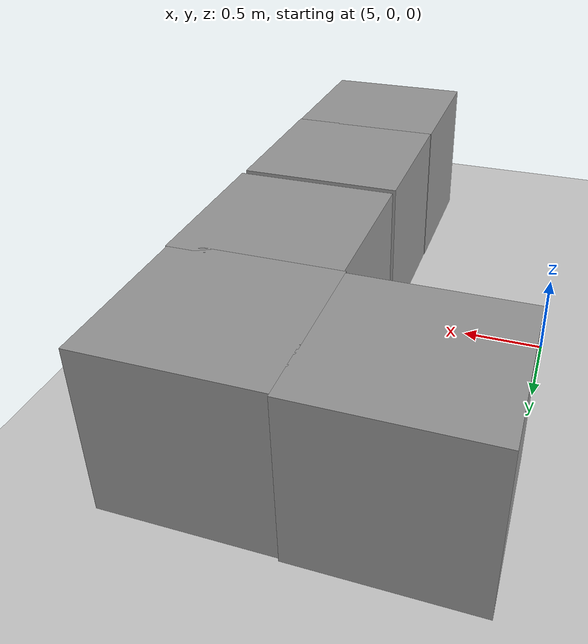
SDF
<?xml version="1.0" ?>
<sdf version='1.7'>
  <world name='default'>

    <include>
      <uri>model://ground_plane</uri>
    </include>
    <include>
      <uri>model://sun</uri>
    </include>

    <plugin name='ros_interface_plugin' filename='librotors_gazebo_ros_interface_plugin.so'/>
    <spherical_coordinates>
      <surface_model>EARTH_WGS84</surface_model>
      <latitude_deg>47.3667</latitude_deg>
      <longitude_deg>8.55</longitude_deg>
      <elevation>500</elevation>
      <heading_deg>0</heading_deg>
    </spherical_coordinates>
    <physics type='ode'>
      <ode>
        <solver>
          <type>quick</type>
          <iters>1000</iters>
          <sor>1.3</sor>
          <use_dynamic_moi_rescaling>0</use_dynamic_moi_rescaling>
        </solver>
        <constraints>
          <cfm>0</cfm>
          <erp>0.2</erp>
          <contact_max_correcting_vel>100</contact_max_correcting_vel>
          <contact_surface_layer>0.001</contact_surface_layer>
        </constraints>
      </ode>
      <max_step_size>0.002</max_step_size>
      <real_time_factor>1</real_time_factor>
      <real_time_update_rate>500</real_time_update_rate>
    </physics>

    <gravity>0 0 -9.8</gravity>
    <magnetic_field>6e-06 2.3e-05 -4.2e-05</magnetic_field>
    <atmosphere type='adiabatic'/>
    <scene>
      <ambient>0.4 0.4 0.4 1</ambient>
      <background>0.7 0.7 0.7 1</background>
      <shadows>1</shadows>
    </scene>
    <wind/>

    <model name='unit_box'>
      <pose>6.49198 1.54562 0.5 0 -0 0</pose>
      <link name='link'>
        <inertial>
          <mass>1</mass>
          <inertia>
            <ixx>0.166667</ixx>
            <ixy>0</ixy>
            <ixz>0</ixz>
            <iyy>0.166667</iyy>
            <iyz>0</iyz>
            <izz>0.166667</izz>
          </inertia>
          <pose>0 0 0 0 -0 0</pose>
        </inertial>
        <collision name='collision'>
          <geometry>
            <box>
              <size>1 1 1</size>
            </box>
          </geometry>
          <max_contacts>10</max_contacts>
          <surface>
            <contact>
              <ode/>
            </contact>
            <bounce/>
            <friction>
              <torsional>
                <ode/>
              </torsional>
              <ode/>
            </friction>
          </surface>
        </collision>
        <visual name='visual'>
          <geometry>
            <box>
              <size>1 1 1</size>
            </box>
          </geometry>
          <material>
            <script>
              <name>Gazebo/Grey</name>
              <uri>file://media/materials/scripts/gazebo.material</uri>
            </script>
          </material>
        </visual>
        <self_collide>0</self_collide>
        <enable_wind>0</enable_wind>
        <kinematic>0</kinematic>
      </link>
    </model>
    <model name='unit_box_0'>
      <pose>6.50132 0.593135 0.5 0 -0 0</pose>
      <link name='link'>
        <inertial>
          <mass>1</mass>
          <inertia>
            <ixx>0.166667</ixx>
            <ixy>0</ixy>
            <ixz>0</ixz>
            <iyy>0.166667</iyy>
            <iyz>0</iyz>
            <izz>0.166667</izz>
          </inertia>
          <pose>0 0 0 0 -0 0</pose>
        </inertial>
        <collision name='collision'>
          <geometry>
            <box>
              <size>1 1 1</size>
            </box>
          </geometry>
          <max_contacts>10</max_contacts>
          <surface>
            <contact>
              <ode/>
            </contact>
            <bounce/>
            <friction>
              <torsional>
                <ode/>
              </torsional>
              <ode/>
            </friction>
          </surface>
        </collision>
        <visual name='visual'>
          <geometry>
            <box>
              <size>1 1 1</size>
            </box>
          </geometry>
          <material>
            <script>
              <name>Gazebo/Grey</name>
              <uri>file://media/materials/scripts/gazebo.material</uri>
            </script>
          </material>
        </visual>
        <self_collide>0</self_collide>
        <enable_wind>0</enable_wind>
        <kinematic>0</kinematic>
      </link>
    </model>
    <model name='unit_box_0_clone'>
      <pose>6.49481 -0.45256 0.5 0 -0 0.000232</pose>
      <link name='link'>
        <inertial>
          <mass>1</mass>
          <inertia>
            <ixx>0.166667</ixx>
            <ixy>0</ixy>
            <ixz>0</ixz>
            <iyy>0.166667</iyy>
            <iyz>0</iyz>
            <izz>0.166667</izz>
          </inertia>
          <pose>0 0 0 0 -0 0</pose>
        </inertial>
        <collision name='collision'>
          <geometry>
            <box>
              <size>1 1 1</size>
            </box>
          </geometry>
          <max_contacts>10</max_contacts>
          <surface>
            <contact>
              <ode/>
            </contact>
            <bounce/>
            <friction>
              <torsional>
                <ode/>
              </torsional>
              <ode/>
            </friction>
          </surface>
        </collision>
        <visual name='visual'>
          <geometry>
            <box>
              <size>1 1 1</size>
            </box>
          </geometry>
          <material>
            <script>
              <name>Gazebo/Grey</name>
              <uri>file://media/materials/scripts/gazebo.material</uri>
            </script>
          </material>
        </visual>
        <self_collide>0</self_collide>
        <enable_wind>0</enable_wind>
        <kinematic>0</kinematic>
      </link>
    </model>
    <model name='unit_box_0_clone_0'>
      <pose>6.49083 -1.44373 0.5 0 -0 0.000232</pose>
      <link name='link'>
        <inertial>
          <mass>1</mass>
          <inertia>
            <ixx>0.166667</ixx>
            <ixy>0</ixy>
            <ixz>0</ixz>
            <iyy>0.166667</iyy>
            <iyz>0</iyz>
            <izz>0.166667</izz>
          </inertia>
          <pose>0 0 0 0 -0 0</pose>
        </inertial>
        <collision name='collision'>
          <geometry>
            <box>
              <size>1 1 1</size>
            </box>
          </geometry>
          <max_contacts>10</max_contacts>
          <surface>
            <contact>
              <ode/>
            </contact>
            <bounce/>
            <friction>
              <torsional>
                <ode/>
              </torsional>
              <ode/>
            </friction>
          </surface>
        </collision>
        <visual name='visual'>
          <geometry>
            <box>
              <size>1 1 1</size>
            </box>
          </geometry>
          <material>
            <script>
              <name>Gazebo/Grey</name>
              <uri>file://media/materials/scripts/gazebo.material</uri>
            </script>
          </material>
        </visual>
        <self_collide>0</self_collide>
        <enable_wind>0</enable_wind>
        <kinematic>0</kinematic>
      </link>
    </model>
    <model name='unit_box_0_clone_1'>
      <pose>5.49927 1.56025 0.5 0 -0 0.000232</pose>
      <link name='link'>
        <inertial>
          <mass>1</mass>
          <inertia>
            <ixx>0.166667</ixx>
            <ixy>0</ixy>
            <ixz>0</ixz>
            <iyy>0.166667</iyy>
            <iyz>0</iyz>
            <izz>0.166667</izz>
          </inertia>
          <pose>0 0 0 0 -0 0</pose>
        </inertial>
        <collision name='collision'>
          <geometry>
            <box>
              <size>1 1 1</size>
            </box>
          </geometry>
          <max_contacts>10</max_contacts>
          <surface>
            <contact>
              <ode/>
            </contact>
            <bounce/>
            <friction>
              <torsional>
                <ode/>
              </torsional>
              <ode/>
            </friction>
          </surface>
        </collision>
        <visual name='visual'>
          <geometry>
            <box>
              <size>1 1 1</size>
            </box>
          </geometry>
          <material>
            <script>
              <name>Gazebo/Grey</name>
              <uri>file://media/materials/scripts/gazebo.material</uri>
            </script>
          </material>
        </visual>
        <self_collide>0</self_collide>
        <enable_wind>0</enable_wind>
        <kinematic>0</kinematic>
      </link>
    </model>

  </world>
</sdf>
